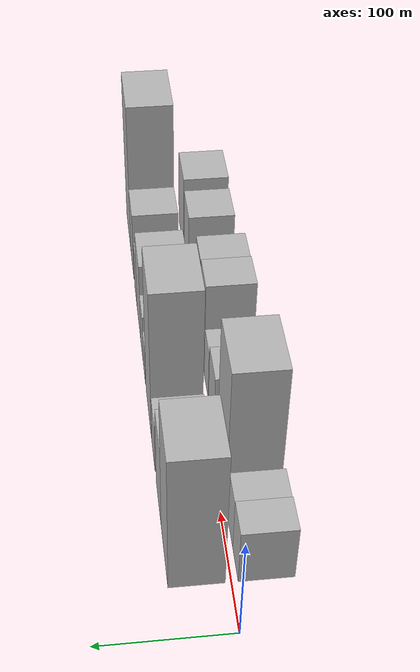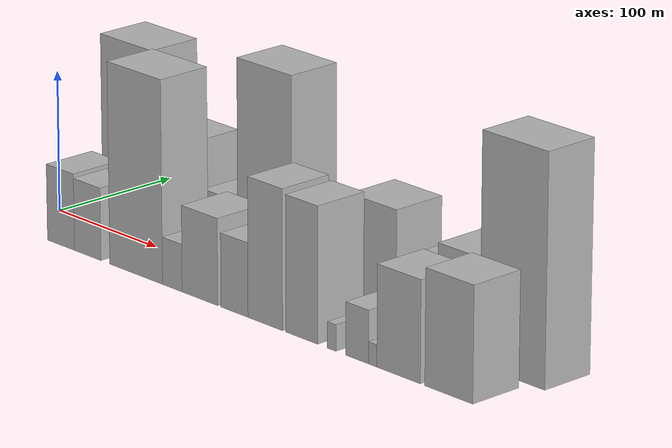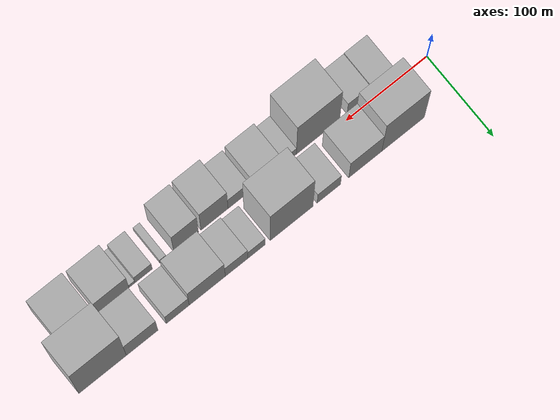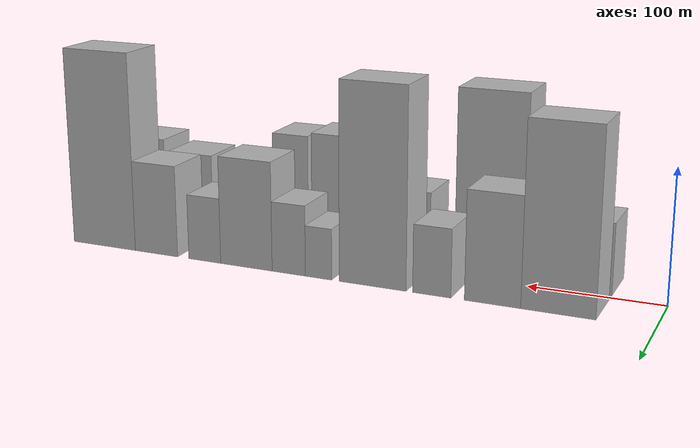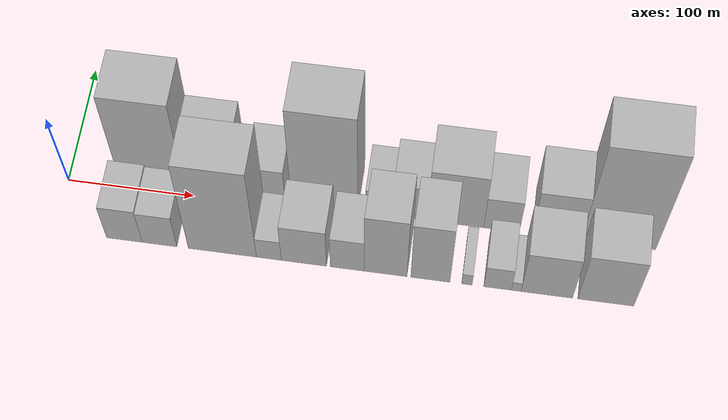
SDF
<sdf version="1.6">
 <world name="default">
  <scene>
   <sky><clouds><speed>12</speed></clouds></sky>
   <ambient>0.4 0.4 0.4 1</ambient>
   <background>0.7 0.7 0.7 1</background>
   <shadows>1</shadows>
  </scene>
  <gravity>0 0 -9.8066</gravity>
  <magnetic_field>6e-06 2.3e-05 -4.2e-05</magnetic_field>
  <physics default="0" name="default_physics" type="ode">
   <ode>
    <solver>
     <type>quick</type>
     <iters>10</iters>
     <sor>1.0</sor>
     <use_dynamic_moi_rescaling>0</use_dynamic_moi_rescaling>
    </solver>
    <constraints>
     <cfm>0</cfm>
     <erp>0.2</erp>
     <contact_max_correcting_vel>100</contact_max_correcting_vel>
     <contact_surface_layer>0.001</contact_surface_layer>
    </constraints>
   </ode>
   <max_step_size>0.004</max_step_size>
   <real_time_factor>1</real_time_factor>
   <real_time_update_rate>250</real_time_update_rate>
  </physics>
  <light name="sun" type="directional">
   <pose>0 0 10 0 0 0</pose>
   <diffuse>0.8 0.8 0.8 1</diffuse>
   <specular>0.2 0.2 0.2 1</specular>
   <attenuation>
    <range>1000</range>
    <constant>0.9</constant>
    <linear>0.01</linear>
    <quadratic>0.001</quadratic>
   </attenuation>
   <direction>-0.5 0.1 -0.9</direction>
  </light>
  <model name="building_1">
   <static>1</static>
   <pose>66.1630 24.5000 0 0.000000 0.000000 1.570796</pose>
   <link name="link">
    <pose>0 0 67.50 0 0 0</pose>
    <collision name="collision"><geometry><box><size>40.0000 52.3259 135.0000</size></box></geometry></collision>
    <visual name="visual">
     <cast_shadows>0</cast_shadows>
     <geometry><box><size>40.0000 52.3259 135.0000</size></box></geometry>
     <material>
      <script>
       <uri>model://HANNAS_wall/materials/scripts</uri>
       <uri>model://HANNAS_wall/materials/textures</uri>
       <name>vrc/HANNAS_wall</name>
      </script>
     </material>
    </visual>
   </link>
  </model>
  <model name="building_2">
   <static>1</static>
   <pose>112.6693 24.5000 0 0.000000 0.000000 1.570796</pose>
   <link name="link">
    <pose>0 0 40.50 0 0 0</pose>
    <collision name="collision"><geometry><box><size>40.0000 40.6868 81.0000</size></box></geometry></collision>
    <visual name="visual">
     <cast_shadows>0</cast_shadows>
     <geometry><box><size>40.0000 40.6868 81.0000</size></box></geometry>
     <material>
      <script>
       <uri>model://HANNAS_wall/materials/scripts</uri>
       <uri>model://HANNAS_wall/materials/textures</uri>
       <name>vrc/HANNAS_wall</name>
      </script>
     </material>
    </visual>
   </link>
  </model>
  <model name="building_3">
   <static>1</static>
   <pose>157.3690 24.5000 0 0.000000 0.000000 1.570796</pose>
   <link name="link">
    <pose>0 0 25.50 0 0 0</pose>
    <collision name="collision"><geometry><box><size>40.0000 28.7124 51.0000</size></box></geometry></collision>
    <visual name="visual">
     <cast_shadows>0</cast_shadows>
     <geometry><box><size>40.0000 28.7124 51.0000</size></box></geometry>
     <material>
      <script>
       <uri>model://HANNAS_wall/materials/scripts</uri>
       <uri>model://HANNAS_wall/materials/textures</uri>
       <name>vrc/HANNAS_wall</name>
      </script>
     </material>
    </visual>
   </link>
  </model>
  <model name="building_4">
   <static>1</static>
   <pose>202.8504 24.5000 0 0.000000 0.000000 1.570796</pose>
   <link name="link">
    <pose>0 0 75.00 0 0 0</pose>
    <collision name="collision"><geometry><box><size>40.0000 52.2504 150.0000</size></box></geometry></collision>
    <visual name="visual">
     <cast_shadows>0</cast_shadows>
     <geometry><box><size>40.0000 52.2504 150.0000</size></box></geometry>
     <material>
      <script>
       <uri>model://HANNAS_wall/materials/scripts</uri>
       <uri>model://HANNAS_wall/materials/textures</uri>
       <name>vrc/HANNAS_wall</name>
      </script>
     </material>
    </visual>
   </link>
  </model>
  <model name="building_5">
   <static>1</static>
   <pose>245.6008 24.5000 0 0.000000 0.000000 1.570796</pose>
   <link name="link">
    <pose>0 0 19.50 0 0 0</pose>
    <collision name="collision"><geometry><box><size>40.0000 21.2503 39.0000</size></box></geometry></collision>
    <visual name="visual">
     <cast_shadows>0</cast_shadows>
     <geometry><box><size>40.0000 21.2503 39.0000</size></box></geometry>
     <material>
      <script>
       <uri>model://HANNAS_wall/materials/scripts</uri>
       <uri>model://HANNAS_wall/materials/textures</uri>
       <name>vrc/HANNAS_wall</name>
      </script>
     </material>
    </visual>
   </link>
  </model>
  <model name="building_6">
   <static>1</static>
   <pose>269.9380 24.5000 0 0.000000 0.000000 1.570796</pose>
   <link name="link">
    <pose>0 0 27.00 0 0 0</pose>
    <collision name="collision"><geometry><box><size>40.0000 27.4241 54.0000</size></box></geometry></collision>
    <visual name="visual">
     <cast_shadows>0</cast_shadows>
     <geometry><box><size>40.0000 27.4241 54.0000</size></box></geometry>
     <material>
      <script>
       <uri>model://HANNAS_wall/materials/scripts</uri>
       <uri>model://HANNAS_wall/materials/textures</uri>
       <name>vrc/HANNAS_wall</name>
      </script>
     </material>
    </visual>
   </link>
  </model>
  <model name="building_7">
   <static>1</static>
   <pose>305.5247 24.5000 0 0.000000 0.000000 1.570796</pose>
   <link name="link">
    <pose>0 0 42.00 0 0 0</pose>
    <collision name="collision"><geometry><box><size>40.0000 43.7491 84.0000</size></box></geometry></collision>
    <visual name="visual">
     <cast_shadows>0</cast_shadows>
     <geometry><box><size>40.0000 43.7491 84.0000</size></box></geometry>
     <material>
      <script>
       <uri>model://HANNAS_wall/materials/scripts</uri>
       <uri>model://HANNAS_wall/materials/textures</uri>
       <name>vrc/HANNAS_wall</name>
      </script>
     </material>
    </visual>
   </link>
  </model>
  <model name="building_8">
   <static>1</static>
   <pose>341.2905 24.5000 0 0.000000 0.000000 1.570796</pose>
   <link name="link">
    <pose>0 0 25.50 0 0 0</pose>
    <collision name="collision"><geometry><box><size>40.0000 27.7826 51.0000</size></box></geometry></collision>
    <visual name="visual">
     <cast_shadows>0</cast_shadows>
     <geometry><box><size>40.0000 27.7826 51.0000</size></box></geometry>
     <material>
      <script>
       <uri>model://HANNAS_wall/materials/scripts</uri>
       <uri>model://HANNAS_wall/materials/textures</uri>
       <name>vrc/HANNAS_wall</name>
      </script>
     </material>
    </visual>
   </link>
  </model>
  <model name="building_9">
   <static>1</static>
   <pose>384.2529 24.5000 0 0.000000 0.000000 1.570796</pose>
   <link name="link">
    <pose>0 0 36.00 0 0 0</pose>
    <collision name="collision"><geometry><box><size>40.0000 38.1422 72.0000</size></box></geometry></collision>
    <visual name="visual">
     <cast_shadows>0</cast_shadows>
     <geometry><box><size>40.0000 38.1422 72.0000</size></box></geometry>
     <material>
      <script>
       <uri>model://HANNAS_wall/materials/scripts</uri>
       <uri>model://HANNAS_wall/materials/textures</uri>
       <name>vrc/HANNAS_wall</name>
      </script>
     </material>
    </visual>
   </link>
  </model>
  <model name="building_10">
   <static>1</static>
   <pose>431.9406 24.5000 0 0.000000 0.000000 1.570796</pose>
   <link name="link">
    <pose>0 0 78.00 0 0 0</pose>
    <collision name="collision"><geometry><box><size>40.0000 57.2332 156.0000</size></box></geometry></collision>
    <visual name="visual">
     <cast_shadows>0</cast_shadows>
     <geometry><box><size>40.0000 57.2332 156.0000</size></box></geometry>
     <material>
      <script>
       <uri>model://HANNAS_wall/materials/scripts</uri>
       <uri>model://HANNAS_wall/materials/textures</uri>
       <name>vrc/HANNAS_wall</name>
      </script>
     </material>
    </visual>
   </link>
  </model>
  <model name="building_11">
   <static>1</static>
   <pose>53.9799 -24.5000 0 0.000000 0.000000 1.570796</pose>
   <link name="link">
    <pose>0 0 27.00 0 0 0</pose>
    <collision name="collision"><geometry><box><size>40.0000 27.9597 54.0000</size></box></geometry></collision>
    <visual name="visual">
     <cast_shadows>0</cast_shadows>
     <geometry><box><size>40.0000 27.9597 54.0000</size></box></geometry>
     <material>
      <script>
       <uri>model://HANNAS_wall/materials/scripts</uri>
       <uri>model://HANNAS_wall/materials/textures</uri>
       <name>vrc/HANNAS_wall</name>
      </script>
     </material>
    </visual>
   </link>
  </model>
  <model name="building_12">
   <static>1</static>
   <pose>81.5833 -24.5000 0 0.000000 0.000000 1.570796</pose>
   <link name="link">
    <pose>0 0 25.50 0 0 0</pose>
    <collision name="collision"><geometry><box><size>40.0000 27.2472 51.0000</size></box></geometry></collision>
    <visual name="visual">
     <cast_shadows>0</cast_shadows>
     <geometry><box><size>40.0000 27.2472 51.0000</size></box></geometry>
     <material>
      <script>
       <uri>model://HANNAS_wall/materials/scripts</uri>
       <uri>model://HANNAS_wall/materials/textures</uri>
       <name>vrc/HANNAS_wall</name>
      </script>
     </material>
    </visual>
   </link>
  </model>
  <model name="building_13">
   <static>1</static>
   <pose>130.8070 -24.5000 0 0.000000 0.000000 1.570796</pose>
   <link name="link">
    <pose>0 0 70.50 0 0 0</pose>
    <collision name="collision"><geometry><box><size>40.0000 53.2002 141.0000</size></box></geometry></collision>
    <visual name="visual">
     <cast_shadows>0</cast_shadows>
     <geometry><box><size>40.0000 53.2002 141.0000</size></box></geometry>
     <material>
      <script>
       <uri>model://HANNAS_wall/materials/scripts</uri>
       <uri>model://HANNAS_wall/materials/textures</uri>
       <name>vrc/HANNAS_wall</name>
      </script>
     </material>
    </visual>
   </link>
  </model>
  <model name="building_14">
   <static>1</static>
   <pose>167.0720 -24.5000 0 0.000000 0.000000 1.570796</pose>
   <link name="link">
    <pose>0 0 16.50 0 0 0</pose>
    <collision name="collision"><geometry><box><size>40.0000 19.3299 33.0000</size></box></geometry></collision>
    <visual name="visual">
     <cast_shadows>0</cast_shadows>
     <geometry><box><size>40.0000 19.3299 33.0000</size></box></geometry>
     <material>
      <script>
       <uri>model://HANNAS_wall/materials/scripts</uri>
       <uri>model://HANNAS_wall/materials/textures</uri>
       <name>vrc/HANNAS_wall</name>
      </script>
     </material>
    </visual>
   </link>
  </model>
  <model name="building_15">
   <static>1</static>
   <pose>194.2468 -24.5000 0 0.000000 0.000000 1.570796</pose>
   <link name="link">
    <pose>0 0 30.00 0 0 0</pose>
    <collision name="collision"><geometry><box><size>40.0000 35.0196 60.0000</size></box></geometry></collision>
    <visual name="visual">
     <cast_shadows>0</cast_shadows>
     <geometry><box><size>40.0000 35.0196 60.0000</size></box></geometry>
     <material>
      <script>
       <uri>model://HANNAS_wall/materials/scripts</uri>
       <uri>model://HANNAS_wall/materials/textures</uri>
       <name>vrc/HANNAS_wall</name>
      </script>
     </material>
    </visual>
   </link>
  </model>
  <model name="building_16">
   <static>1</static>
   <pose>227.8374 -24.5000 0 0.000000 0.000000 1.570796</pose>
   <link name="link">
    <pose>0 0 25.50 0 0 0</pose>
    <collision name="collision"><geometry><box><size>40.0000 26.1618 51.0000</size></box></geometry></collision>
    <visual name="visual">
     <cast_shadows>0</cast_shadows>
     <geometry><box><size>40.0000 26.1618 51.0000</size></box></geometry>
     <material>
      <script>
       <uri>model://HANNAS_wall/materials/scripts</uri>
       <uri>model://HANNAS_wall/materials/textures</uri>
       <name>vrc/HANNAS_wall</name>
      </script>
     </material>
    </visual>
   </link>
  </model>
  <model name="building_17">
   <static>1</static>
   <pose>257.3687 -24.5000 0 0.000000 0.000000 1.570796</pose>
   <link name="link">
    <pose>0 0 48.00 0 0 0</pose>
    <collision name="collision"><geometry><box><size>40.0000 32.9008 96.0000</size></box></geometry></collision>
    <visual name="visual">
     <cast_shadows>0</cast_shadows>
     <geometry><box><size>40.0000 32.9008 96.0000</size></box></geometry>
     <material>
      <script>
       <uri>model://HANNAS_wall/materials/scripts</uri>
       <uri>model://HANNAS_wall/materials/textures</uri>
       <name>vrc/HANNAS_wall</name>
      </script>
     </material>
    </visual>
   </link>
  </model>
  <model name="building_18">
   <static>1</static>
   <pose>291.8388 -24.5000 0 0.000000 0.000000 1.570796</pose>
   <link name="link">
    <pose>0 0 46.50 0 0 0</pose>
    <collision name="collision"><geometry><box><size>40.0000 30.0394 93.0000</size></box></geometry></collision>
    <visual name="visual">
     <cast_shadows>0</cast_shadows>
     <geometry><box><size>40.0000 30.0394 93.0000</size></box></geometry>
     <material>
      <script>
       <uri>model://HANNAS_wall/materials/scripts</uri>
       <uri>model://HANNAS_wall/materials/textures</uri>
       <name>vrc/HANNAS_wall</name>
      </script>
     </material>
    </visual>
   </link>
  </model>
  <model name="building_19">
   <static>1</static>
   <pose>319.8371 -24.5000 0 0.000000 0.000000 1.570796</pose>
   <link name="link">
    <pose>0 0 9.00 0 0 0</pose>
    <collision name="collision"><geometry><box><size>40.0000 7.9570 18.0000</size></box></geometry></collision>
    <visual name="visual">
     <cast_shadows>0</cast_shadows>
     <geometry><box><size>40.0000 7.9570 18.0000</size></box></geometry>
     <material>
      <script>
       <uri>model://HANNAS_wall/materials/scripts</uri>
       <uri>model://HANNAS_wall/materials/textures</uri>
       <name>vrc/HANNAS_wall</name>
      </script>
     </material>
    </visual>
   </link>
  </model>
  <model name="building_20">
   <static>1</static>
   <pose>343.3180 -24.5000 0 0.000000 0.000000 1.570796</pose>
   <link name="link">
    <pose>0 0 18.00 0 0 0</pose>
    <collision name="collision"><geometry><box><size>40.0000 21.0048 36.0000</size></box></geometry></collision>
    <visual name="visual">
     <cast_shadows>0</cast_shadows>
     <geometry><box><size>40.0000 21.0048 36.0000</size></box></geometry>
     <material>
      <script>
       <uri>model://HANNAS_wall/materials/scripts</uri>
       <uri>model://HANNAS_wall/materials/textures</uri>
       <name>vrc/HANNAS_wall</name>
      </script>
     </material>
    </visual>
   </link>
  </model>
  <model name="building_21">
   <static>1</static>
   <pose>357.5585 -24.5000 0 0.000000 0.000000 1.570796</pose>
   <link name="link">
    <pose>0 0 7.50 0 0 0</pose>
    <collision name="collision"><geometry><box><size>40.0000 7.4762 15.0000</size></box></geometry></collision>
    <visual name="visual">
     <cast_shadows>0</cast_shadows>
     <geometry><box><size>40.0000 7.4762 15.0000</size></box></geometry>
     <material>
      <script>
       <uri>model://HANNAS_wall/materials/scripts</uri>
       <uri>model://HANNAS_wall/materials/textures</uri>
       <name>vrc/HANNAS_wall</name>
      </script>
     </material>
    </visual>
   </link>
  </model>
  <model name="building_22">
   <static>1</static>
   <pose>380.8892 -24.5000 0 0.000000 0.000000 1.570796</pose>
   <link name="link">
    <pose>0 0 34.50 0 0 0</pose>
    <collision name="collision"><geometry><box><size>40.0000 39.1854 69.0000</size></box></geometry></collision>
    <visual name="visual">
     <cast_shadows>0</cast_shadows>
     <geometry><box><size>40.0000 39.1854 69.0000</size></box></geometry>
     <material>
      <script>
       <uri>model://HANNAS_wall/materials/scripts</uri>
       <uri>model://HANNAS_wall/materials/textures</uri>
       <name>vrc/HANNAS_wall</name>
      </script>
     </material>
    </visual>
   </link>
  </model>
  <model name="building_23">
   <static>1</static>
   <pose>425.6633 -24.5000 0 0.000000 0.000000 1.570796</pose>
   <link name="link">
    <pose>0 0 39.00 0 0 0</pose>
    <collision name="collision"><geometry><box><size>40.0000 42.3628 78.0000</size></box></geometry></collision>
    <visual name="visual">
     <cast_shadows>0</cast_shadows>
     <geometry><box><size>40.0000 42.3628 78.0000</size></box></geometry>
     <material>
      <script>
       <uri>model://HANNAS_wall/materials/scripts</uri>
       <uri>model://HANNAS_wall/materials/textures</uri>
       <name>vrc/HANNAS_wall</name>
      </script>
     </material>
    </visual>
   </link>
  </model>
 </world>
</sdf>
